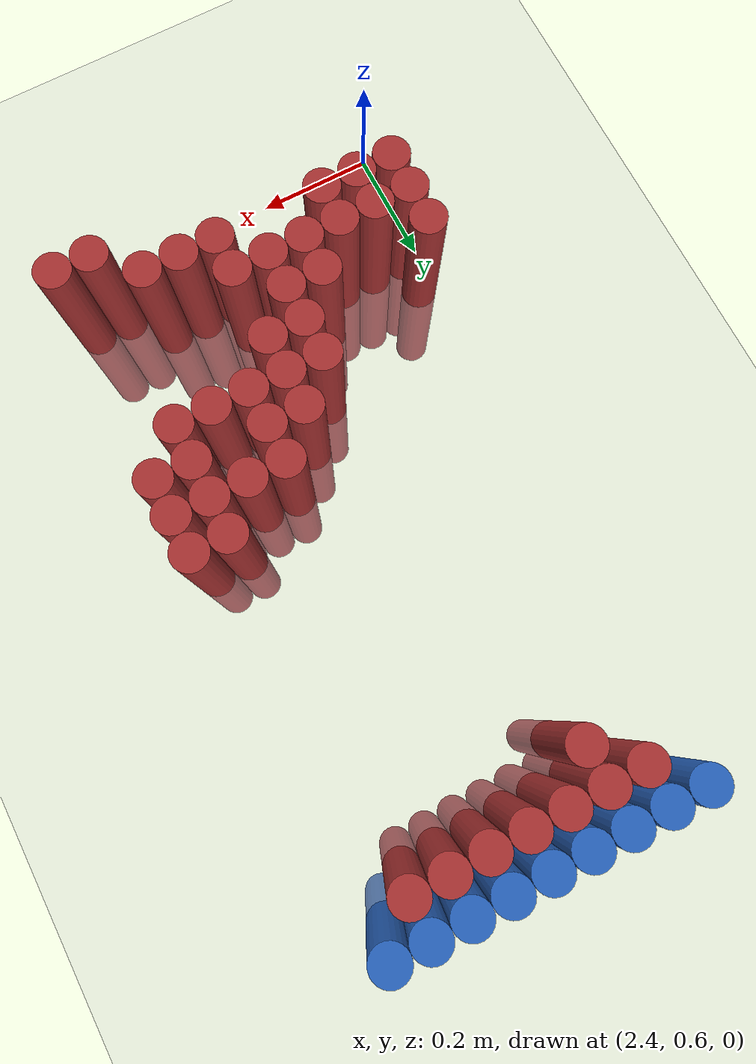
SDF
<sdf version="1.6">
 <world name="default">
  <model name="ground_plane">
   <static>1</static>
   <link name="link">
    <collision name="collision">
     <geometry><plane><normal>0 0 1</normal><size>100 100</size></plane></geometry>
     <surface><friction><ode><mu>100</mu><mu2>50</mu2></ode></friction></surface>
    </collision>
    <visual name="visual">
     <cast_shadows>0</cast_shadows>
     <geometry><plane><normal>0 0 1</normal><size>100 100</size></plane></geometry>
     <material>
      <script><uri>file://media/materials/scripts/gazebo.material</uri><name>Gazebo/Grey</name></script>
     </material>
    </visual>
   </link>
  </model>
  <model name="unit_cylinder_102">
   <static>1</static>
   <pose>2.490000 1.770000 0.000000 0.000000 0.000000 0.000000</pose>
   <link name="link">
    <inertial>
     <mass>1</mass>
     <inertia><ixx>0.145833</ixx><ixy>0</ixy><ixz>0</ixz><iyy>0.145833</iyy><iyz>0</iyz><izz>0.125</izz></inertia>
    </inertial>
    <collision name="collision">
     <geometry><cylinder><radius>0.030000</radius><length>0.5</length></cylinder></geometry>
    </collision>
    <visual name="visual">
     <geometry><cylinder><radius>0.030000</radius><length>0.5</length></cylinder></geometry>
     <material>
      <ambient>0.152000 0.379000 0.720000 1</ambient>
      <diffuse>0.152000 0.379000 0.720000 1</diffuse>
     </material>
     <material>
      <script><name>Gazebo/Grey</name><uri>file://media/materials/scripts/gazebo.material</uri></script>
     </material>
    </visual>
   </link>
  </model>
  <model name="unit_cylinder_103">
   <static>1</static>
   <pose>2.550000 1.770000 0.000000 0.000000 0.000000 0.000000</pose>
   <link name="link">
    <inertial>
     <mass>1</mass>
     <inertia><ixx>0.145833</ixx><ixy>0</ixy><ixz>0</ixz><iyy>0.145833</iyy><iyz>0</iyz><izz>0.125</izz></inertia>
    </inertial>
    <collision name="collision">
     <geometry><cylinder><radius>0.030000</radius><length>0.5</length></cylinder></geometry>
    </collision>
    <visual name="visual">
     <geometry><cylinder><radius>0.030000</radius><length>0.5</length></cylinder></geometry>
     <material>
      <ambient>0.152000 0.379000 0.720000 1</ambient>
      <diffuse>0.152000 0.379000 0.720000 1</diffuse>
     </material>
     <material>
      <script><name>Gazebo/Grey</name><uri>file://media/materials/scripts/gazebo.material</uri></script>
     </material>
    </visual>
   </link>
  </model>
  <model name="unit_cylinder_104">
   <static>1</static>
   <pose>2.610000 1.770000 0.000000 0.000000 0.000000 0.000000</pose>
   <link name="link">
    <inertial>
     <mass>1</mass>
     <inertia><ixx>0.145833</ixx><ixy>0</ixy><ixz>0</ixz><iyy>0.145833</iyy><iyz>0</iyz><izz>0.125</izz></inertia>
    </inertial>
    <collision name="collision">
     <geometry><cylinder><radius>0.030000</radius><length>0.5</length></cylinder></geometry>
    </collision>
    <visual name="visual">
     <geometry><cylinder><radius>0.030000</radius><length>0.5</length></cylinder></geometry>
     <material>
      <ambient>0.152000 0.379000 0.720000 1</ambient>
      <diffuse>0.152000 0.379000 0.720000 1</diffuse>
     </material>
     <material>
      <script><name>Gazebo/Grey</name><uri>file://media/materials/scripts/gazebo.material</uri></script>
     </material>
    </visual>
   </link>
  </model>
  <model name="unit_cylinder_105">
   <static>1</static>
   <pose>2.670000 1.770000 0.000000 0.000000 0.000000 0.000000</pose>
   <link name="link">
    <inertial>
     <mass>1</mass>
     <inertia><ixx>0.145833</ixx><ixy>0</ixy><ixz>0</ixz><iyy>0.145833</iyy><iyz>0</iyz><izz>0.125</izz></inertia>
    </inertial>
    <collision name="collision">
     <geometry><cylinder><radius>0.030000</radius><length>0.5</length></cylinder></geometry>
    </collision>
    <visual name="visual">
     <geometry><cylinder><radius>0.030000</radius><length>0.5</length></cylinder></geometry>
     <material>
      <ambient>0.152000 0.379000 0.720000 1</ambient>
      <diffuse>0.152000 0.379000 0.720000 1</diffuse>
     </material>
     <material>
      <script><name>Gazebo/Grey</name><uri>file://media/materials/scripts/gazebo.material</uri></script>
     </material>
    </visual>
   </link>
  </model>
  <model name="unit_cylinder_106">
   <static>1</static>
   <pose>2.730000 1.770000 0.000000 0.000000 0.000000 0.000000</pose>
   <link name="link">
    <inertial>
     <mass>1</mass>
     <inertia><ixx>0.145833</ixx><ixy>0</ixy><ixz>0</ixz><iyy>0.145833</iyy><iyz>0</iyz><izz>0.125</izz></inertia>
    </inertial>
    <collision name="collision">
     <geometry><cylinder><radius>0.030000</radius><length>0.5</length></cylinder></geometry>
    </collision>
    <visual name="visual">
     <geometry><cylinder><radius>0.030000</radius><length>0.5</length></cylinder></geometry>
     <material>
      <ambient>0.152000 0.379000 0.720000 1</ambient>
      <diffuse>0.152000 0.379000 0.720000 1</diffuse>
     </material>
     <material>
      <script><name>Gazebo/Grey</name><uri>file://media/materials/scripts/gazebo.material</uri></script>
     </material>
    </visual>
   </link>
  </model>
  <model name="unit_cylinder_107">
   <static>1</static>
   <pose>2.790000 1.770000 0.000000 0.000000 0.000000 0.000000</pose>
   <link name="link">
    <inertial>
     <mass>1</mass>
     <inertia><ixx>0.145833</ixx><ixy>0</ixy><ixz>0</ixz><iyy>0.145833</iyy><iyz>0</iyz><izz>0.125</izz></inertia>
    </inertial>
    <collision name="collision">
     <geometry><cylinder><radius>0.030000</radius><length>0.5</length></cylinder></geometry>
    </collision>
    <visual name="visual">
     <geometry><cylinder><radius>0.030000</radius><length>0.5</length></cylinder></geometry>
     <material>
      <ambient>0.152000 0.379000 0.720000 1</ambient>
      <diffuse>0.152000 0.379000 0.720000 1</diffuse>
     </material>
     <material>
      <script><name>Gazebo/Grey</name><uri>file://media/materials/scripts/gazebo.material</uri></script>
     </material>
    </visual>
   </link>
  </model>
  <model name="unit_cylinder_108">
   <static>1</static>
   <pose>2.850000 1.770000 0.000000 0.000000 0.000000 0.000000</pose>
   <link name="link">
    <inertial>
     <mass>1</mass>
     <inertia><ixx>0.145833</ixx><ixy>0</ixy><ixz>0</ixz><iyy>0.145833</iyy><iyz>0</iyz><izz>0.125</izz></inertia>
    </inertial>
    <collision name="collision">
     <geometry><cylinder><radius>0.030000</radius><length>0.5</length></cylinder></geometry>
    </collision>
    <visual name="visual">
     <geometry><cylinder><radius>0.030000</radius><length>0.5</length></cylinder></geometry>
     <material>
      <ambient>0.152000 0.379000 0.720000 1</ambient>
      <diffuse>0.152000 0.379000 0.720000 1</diffuse>
     </material>
     <material>
      <script><name>Gazebo/Grey</name><uri>file://media/materials/scripts/gazebo.material</uri></script>
     </material>
    </visual>
   </link>
  </model>
  <model name="unit_cylinder_109">
   <static>1</static>
   <pose>2.910000 1.770000 0.000000 0.000000 0.000000 0.000000</pose>
   <link name="link">
    <inertial>
     <mass>1</mass>
     <inertia><ixx>0.145833</ixx><ixy>0</ixy><ixz>0</ixz><iyy>0.145833</iyy><iyz>0</iyz><izz>0.125</izz></inertia>
    </inertial>
    <collision name="collision">
     <geometry><cylinder><radius>0.030000</radius><length>0.5</length></cylinder></geometry>
    </collision>
    <visual name="visual">
     <geometry><cylinder><radius>0.030000</radius><length>0.5</length></cylinder></geometry>
     <material>
      <ambient>0.152000 0.379000 0.720000 1</ambient>
      <diffuse>0.152000 0.379000 0.720000 1</diffuse>
     </material>
     <material>
      <script><name>Gazebo/Grey</name><uri>file://media/materials/scripts/gazebo.material</uri></script>
     </material>
    </visual>
   </link>
  </model>
  <model name="unit_cylinder_110">
   <static>1</static>
   <pose>2.970000 1.770000 0.000000 0.000000 0.000000 0.000000</pose>
   <link name="link">
    <inertial>
     <mass>1</mass>
     <inertia><ixx>0.145833</ixx><ixy>0</ixy><ixz>0</ixz><iyy>0.145833</iyy><iyz>0</iyz><izz>0.125</izz></inertia>
    </inertial>
    <collision name="collision">
     <geometry><cylinder><radius>0.030000</radius><length>0.5</length></cylinder></geometry>
    </collision>
    <visual name="visual">
     <geometry><cylinder><radius>0.030000</radius><length>0.5</length></cylinder></geometry>
     <material>
      <ambient>0.152000 0.379000 0.720000 1</ambient>
      <diffuse>0.152000 0.379000 0.720000 1</diffuse>
     </material>
     <material>
      <script><name>Gazebo/Grey</name><uri>file://media/materials/scripts/gazebo.material</uri></script>
     </material>
    </visual>
   </link>
  </model>
  <model name="unit_cylinder_128">
   <static>1</static>
   <pose>2.550000 1.710000 0.000000 0.000000 0.000000 0.000000</pose>
   <link name="link">
    <inertial>
     <mass>1</mass>
     <inertia><ixx>0.145833</ixx><ixy>0</ixy><ixz>0</ixz><iyy>0.145833</iyy><iyz>0</iyz><izz>0.125</izz></inertia>
    </inertial>
    <collision name="collision">
     <geometry><cylinder><radius>0.030000</radius><length>0.5</length></cylinder></geometry>
    </collision>
    <visual name="visual">
     <geometry><cylinder><radius>0.030000</radius><length>0.5</length></cylinder></geometry>
     <material>
      <ambient>0.648000 0.192000 0.192000 1</ambient>
      <diffuse>0.648000 0.192000 0.192000 1</diffuse>
     </material>
     <material>
      <script><name>Gazebo/Grey</name><uri>file://media/materials/scripts/gazebo.material</uri></script>
     </material>
    </visual>
   </link>
  </model>
  <model name="unit_cylinder_129">
   <static>1</static>
   <pose>2.610000 1.710000 0.000000 0.000000 0.000000 0.000000</pose>
   <link name="link">
    <inertial>
     <mass>1</mass>
     <inertia><ixx>0.145833</ixx><ixy>0</ixy><ixz>0</ixz><iyy>0.145833</iyy><iyz>0</iyz><izz>0.125</izz></inertia>
    </inertial>
    <collision name="collision">
     <geometry><cylinder><radius>0.030000</radius><length>0.5</length></cylinder></geometry>
    </collision>
    <visual name="visual">
     <geometry><cylinder><radius>0.030000</radius><length>0.5</length></cylinder></geometry>
     <material>
      <ambient>0.648000 0.192000 0.192000 1</ambient>
      <diffuse>0.648000 0.192000 0.192000 1</diffuse>
     </material>
     <material>
      <script><name>Gazebo/Grey</name><uri>file://media/materials/scripts/gazebo.material</uri></script>
     </material>
    </visual>
   </link>
  </model>
  <model name="unit_cylinder_130">
   <static>1</static>
   <pose>2.670000 1.710000 0.000000 0.000000 0.000000 0.000000</pose>
   <link name="link">
    <inertial>
     <mass>1</mass>
     <inertia><ixx>0.145833</ixx><ixy>0</ixy><ixz>0</ixz><iyy>0.145833</iyy><iyz>0</iyz><izz>0.125</izz></inertia>
    </inertial>
    <collision name="collision">
     <geometry><cylinder><radius>0.030000</radius><length>0.5</length></cylinder></geometry>
    </collision>
    <visual name="visual">
     <geometry><cylinder><radius>0.030000</radius><length>0.5</length></cylinder></geometry>
     <material>
      <ambient>0.648000 0.192000 0.192000 1</ambient>
      <diffuse>0.648000 0.192000 0.192000 1</diffuse>
     </material>
     <material>
      <script><name>Gazebo/Grey</name><uri>file://media/materials/scripts/gazebo.material</uri></script>
     </material>
    </visual>
   </link>
  </model>
  <model name="unit_cylinder_131">
   <static>1</static>
   <pose>2.730000 1.710000 0.000000 0.000000 0.000000 0.000000</pose>
   <link name="link">
    <inertial>
     <mass>1</mass>
     <inertia><ixx>0.145833</ixx><ixy>0</ixy><ixz>0</ixz><iyy>0.145833</iyy><iyz>0</iyz><izz>0.125</izz></inertia>
    </inertial>
    <collision name="collision">
     <geometry><cylinder><radius>0.030000</radius><length>0.5</length></cylinder></geometry>
    </collision>
    <visual name="visual">
     <geometry><cylinder><radius>0.030000</radius><length>0.5</length></cylinder></geometry>
     <material>
      <ambient>0.648000 0.192000 0.192000 1</ambient>
      <diffuse>0.648000 0.192000 0.192000 1</diffuse>
     </material>
     <material>
      <script><name>Gazebo/Grey</name><uri>file://media/materials/scripts/gazebo.material</uri></script>
     </material>
    </visual>
   </link>
  </model>
  <model name="unit_cylinder_132">
   <static>1</static>
   <pose>2.790000 1.710000 0.000000 0.000000 0.000000 0.000000</pose>
   <link name="link">
    <inertial>
     <mass>1</mass>
     <inertia><ixx>0.145833</ixx><ixy>0</ixy><ixz>0</ixz><iyy>0.145833</iyy><iyz>0</iyz><izz>0.125</izz></inertia>
    </inertial>
    <collision name="collision">
     <geometry><cylinder><radius>0.030000</radius><length>0.5</length></cylinder></geometry>
    </collision>
    <visual name="visual">
     <geometry><cylinder><radius>0.030000</radius><length>0.5</length></cylinder></geometry>
     <material>
      <ambient>0.648000 0.192000 0.192000 1</ambient>
      <diffuse>0.648000 0.192000 0.192000 1</diffuse>
     </material>
     <material>
      <script><name>Gazebo/Grey</name><uri>file://media/materials/scripts/gazebo.material</uri></script>
     </material>
    </visual>
   </link>
  </model>
  <model name="unit_cylinder_133">
   <static>1</static>
   <pose>2.850000 1.710000 0.000000 0.000000 0.000000 0.000000</pose>
   <link name="link">
    <inertial>
     <mass>1</mass>
     <inertia><ixx>0.145833</ixx><ixy>0</ixy><ixz>0</ixz><iyy>0.145833</iyy><iyz>0</iyz><izz>0.125</izz></inertia>
    </inertial>
    <collision name="collision">
     <geometry><cylinder><radius>0.030000</radius><length>0.5</length></cylinder></geometry>
    </collision>
    <visual name="visual">
     <geometry><cylinder><radius>0.030000</radius><length>0.5</length></cylinder></geometry>
     <material>
      <ambient>0.648000 0.192000 0.192000 1</ambient>
      <diffuse>0.648000 0.192000 0.192000 1</diffuse>
     </material>
     <material>
      <script><name>Gazebo/Grey</name><uri>file://media/materials/scripts/gazebo.material</uri></script>
     </material>
    </visual>
   </link>
  </model>
  <model name="unit_cylinder_134">
   <static>1</static>
   <pose>2.910000 1.710000 0.000000 0.000000 0.000000 0.000000</pose>
   <link name="link">
    <inertial>
     <mass>1</mass>
     <inertia><ixx>0.145833</ixx><ixy>0</ixy><ixz>0</ixz><iyy>0.145833</iyy><iyz>0</iyz><izz>0.125</izz></inertia>
    </inertial>
    <collision name="collision">
     <geometry><cylinder><radius>0.030000</radius><length>0.5</length></cylinder></geometry>
    </collision>
    <visual name="visual">
     <geometry><cylinder><radius>0.030000</radius><length>0.5</length></cylinder></geometry>
     <material>
      <ambient>0.648000 0.192000 0.192000 1</ambient>
      <diffuse>0.648000 0.192000 0.192000 1</diffuse>
     </material>
     <material>
      <script><name>Gazebo/Grey</name><uri>file://media/materials/scripts/gazebo.material</uri></script>
     </material>
    </visual>
   </link>
  </model>
  <model name="unit_cylinder_142">
   <static>1</static>
   <pose>2.610000 1.650000 0.000000 0.000000 0.000000 0.000000</pose>
   <link name="link">
    <inertial>
     <mass>1</mass>
     <inertia><ixx>0.145833</ixx><ixy>0</ixy><ixz>0</ixz><iyy>0.145833</iyy><iyz>0</iyz><izz>0.125</izz></inertia>
    </inertial>
    <collision name="collision">
     <geometry><cylinder><radius>0.030000</radius><length>0.5</length></cylinder></geometry>
    </collision>
    <visual name="visual">
     <geometry><cylinder><radius>0.030000</radius><length>0.5</length></cylinder></geometry>
     <material>
      <ambient>0.648000 0.192000 0.192000 1</ambient>
      <diffuse>0.648000 0.192000 0.192000 1</diffuse>
     </material>
     <material>
      <script><name>Gazebo/Grey</name><uri>file://media/materials/scripts/gazebo.material</uri></script>
     </material>
    </visual>
   </link>
  </model>
  <model name="unit_cylinder_152">
   <static>1</static>
   <pose>2.910000 1.170000 0.000000 0.000000 0.000000 0.000000</pose>
   <link name="link">
    <inertial>
     <mass>1</mass>
     <inertia><ixx>0.145833</ixx><ixy>0</ixy><ixz>0</ixz><iyy>0.145833</iyy><iyz>0</iyz><izz>0.125</izz></inertia>
    </inertial>
    <collision name="collision">
     <geometry><cylinder><radius>0.030000</radius><length>0.5</length></cylinder></geometry>
    </collision>
    <visual name="visual">
     <geometry><cylinder><radius>0.030000</radius><length>0.5</length></cylinder></geometry>
     <material>
      <ambient>0.648000 0.192000 0.192000 1</ambient>
      <diffuse>0.648000 0.192000 0.192000 1</diffuse>
     </material>
     <material>
      <script><name>Gazebo/Grey</name><uri>file://media/materials/scripts/gazebo.material</uri></script>
     </material>
    </visual>
   </link>
  </model>
  <model name="unit_cylinder_153">
   <static>1</static>
   <pose>2.970000 1.170000 0.000000 0.000000 0.000000 0.000000</pose>
   <link name="link">
    <inertial>
     <mass>1</mass>
     <inertia><ixx>0.145833</ixx><ixy>0</ixy><ixz>0</ixz><iyy>0.145833</iyy><iyz>0</iyz><izz>0.125</izz></inertia>
    </inertial>
    <collision name="collision">
     <geometry><cylinder><radius>0.030000</radius><length>0.5</length></cylinder></geometry>
    </collision>
    <visual name="visual">
     <geometry><cylinder><radius>0.030000</radius><length>0.5</length></cylinder></geometry>
     <material>
      <ambient>0.648000 0.192000 0.192000 1</ambient>
      <diffuse>0.648000 0.192000 0.192000 1</diffuse>
     </material>
     <material>
      <script><name>Gazebo/Grey</name><uri>file://media/materials/scripts/gazebo.material</uri></script>
     </material>
    </visual>
   </link>
  </model>
  <model name="unit_cylinder_158">
   <static>1</static>
   <pose>2.790000 1.110000 0.000000 0.000000 0.000000 0.000000</pose>
   <link name="link">
    <inertial>
     <mass>1</mass>
     <inertia><ixx>0.145833</ixx><ixy>0</ixy><ixz>0</ixz><iyy>0.145833</iyy><iyz>0</iyz><izz>0.125</izz></inertia>
    </inertial>
    <collision name="collision">
     <geometry><cylinder><radius>0.030000</radius><length>0.5</length></cylinder></geometry>
    </collision>
    <visual name="visual">
     <geometry><cylinder><radius>0.030000</radius><length>0.5</length></cylinder></geometry>
     <material>
      <ambient>0.648000 0.192000 0.192000 1</ambient>
      <diffuse>0.648000 0.192000 0.192000 1</diffuse>
     </material>
     <material>
      <script><name>Gazebo/Grey</name><uri>file://media/materials/scripts/gazebo.material</uri></script>
     </material>
    </visual>
   </link>
  </model>
  <model name="unit_cylinder_159">
   <static>1</static>
   <pose>2.850000 1.110000 0.000000 0.000000 0.000000 0.000000</pose>
   <link name="link">
    <inertial>
     <mass>1</mass>
     <inertia><ixx>0.145833</ixx><ixy>0</ixy><ixz>0</ixz><iyy>0.145833</iyy><iyz>0</iyz><izz>0.125</izz></inertia>
    </inertial>
    <collision name="collision">
     <geometry><cylinder><radius>0.030000</radius><length>0.5</length></cylinder></geometry>
    </collision>
    <visual name="visual">
     <geometry><cylinder><radius>0.030000</radius><length>0.5</length></cylinder></geometry>
     <material>
      <ambient>0.648000 0.192000 0.192000 1</ambient>
      <diffuse>0.648000 0.192000 0.192000 1</diffuse>
     </material>
     <material>
      <script><name>Gazebo/Grey</name><uri>file://media/materials/scripts/gazebo.material</uri></script>
     </material>
    </visual>
   </link>
  </model>
  <model name="unit_cylinder_160">
   <static>1</static>
   <pose>2.910000 1.110000 0.000000 0.000000 0.000000 0.000000</pose>
   <link name="link">
    <inertial>
     <mass>1</mass>
     <inertia><ixx>0.145833</ixx><ixy>0</ixy><ixz>0</ixz><iyy>0.145833</iyy><iyz>0</iyz><izz>0.125</izz></inertia>
    </inertial>
    <collision name="collision">
     <geometry><cylinder><radius>0.030000</radius><length>0.5</length></cylinder></geometry>
    </collision>
    <visual name="visual">
     <geometry><cylinder><radius>0.030000</radius><length>0.5</length></cylinder></geometry>
     <material>
      <ambient>0.648000 0.192000 0.192000 1</ambient>
      <diffuse>0.648000 0.192000 0.192000 1</diffuse>
     </material>
     <material>
      <script><name>Gazebo/Grey</name><uri>file://media/materials/scripts/gazebo.material</uri></script>
     </material>
    </visual>
   </link>
  </model>
  <model name="unit_cylinder_161">
   <static>1</static>
   <pose>2.970000 1.110000 0.000000 0.000000 0.000000 0.000000</pose>
   <link name="link">
    <inertial>
     <mass>1</mass>
     <inertia><ixx>0.145833</ixx><ixy>0</ixy><ixz>0</ixz><iyy>0.145833</iyy><iyz>0</iyz><izz>0.125</izz></inertia>
    </inertial>
    <collision name="collision">
     <geometry><cylinder><radius>0.030000</radius><length>0.5</length></cylinder></geometry>
    </collision>
    <visual name="visual">
     <geometry><cylinder><radius>0.030000</radius><length>0.5</length></cylinder></geometry>
     <material>
      <ambient>0.648000 0.192000 0.192000 1</ambient>
      <diffuse>0.648000 0.192000 0.192000 1</diffuse>
     </material>
     <material>
      <script><name>Gazebo/Grey</name><uri>file://media/materials/scripts/gazebo.material</uri></script>
     </material>
    </visual>
   </link>
  </model>
  <model name="unit_cylinder_169">
   <static>1</static>
   <pose>2.730000 1.050000 0.000000 0.000000 0.000000 0.000000</pose>
   <link name="link">
    <inertial>
     <mass>1</mass>
     <inertia><ixx>0.145833</ixx><ixy>0</ixy><ixz>0</ixz><iyy>0.145833</iyy><iyz>0</iyz><izz>0.125</izz></inertia>
    </inertial>
    <collision name="collision">
     <geometry><cylinder><radius>0.030000</radius><length>0.5</length></cylinder></geometry>
    </collision>
    <visual name="visual">
     <geometry><cylinder><radius>0.030000</radius><length>0.5</length></cylinder></geometry>
     <material>
      <ambient>0.648000 0.192000 0.192000 1</ambient>
      <diffuse>0.648000 0.192000 0.192000 1</diffuse>
     </material>
     <material>
      <script><name>Gazebo/Grey</name><uri>file://media/materials/scripts/gazebo.material</uri></script>
     </material>
    </visual>
   </link>
  </model>
  <model name="unit_cylinder_170">
   <static>1</static>
   <pose>2.790000 1.050000 0.000000 0.000000 0.000000 0.000000</pose>
   <link name="link">
    <inertial>
     <mass>1</mass>
     <inertia><ixx>0.145833</ixx><ixy>0</ixy><ixz>0</ixz><iyy>0.145833</iyy><iyz>0</iyz><izz>0.125</izz></inertia>
    </inertial>
    <collision name="collision">
     <geometry><cylinder><radius>0.030000</radius><length>0.5</length></cylinder></geometry>
    </collision>
    <visual name="visual">
     <geometry><cylinder><radius>0.030000</radius><length>0.5</length></cylinder></geometry>
     <material>
      <ambient>0.648000 0.192000 0.192000 1</ambient>
      <diffuse>0.648000 0.192000 0.192000 1</diffuse>
     </material>
     <material>
      <script><name>Gazebo/Grey</name><uri>file://media/materials/scripts/gazebo.material</uri></script>
     </material>
    </visual>
   </link>
  </model>
  <model name="unit_cylinder_171">
   <static>1</static>
   <pose>2.910000 1.050000 0.000000 0.000000 0.000000 0.000000</pose>
   <link name="link">
    <inertial>
     <mass>1</mass>
     <inertia><ixx>0.145833</ixx><ixy>0</ixy><ixz>0</ixz><iyy>0.145833</iyy><iyz>0</iyz><izz>0.125</izz></inertia>
    </inertial>
    <collision name="collision">
     <geometry><cylinder><radius>0.030000</radius><length>0.5</length></cylinder></geometry>
    </collision>
    <visual name="visual">
     <geometry><cylinder><radius>0.030000</radius><length>0.5</length></cylinder></geometry>
     <material>
      <ambient>0.648000 0.192000 0.192000 1</ambient>
      <diffuse>0.648000 0.192000 0.192000 1</diffuse>
     </material>
     <material>
      <script><name>Gazebo/Grey</name><uri>file://media/materials/scripts/gazebo.material</uri></script>
     </material>
    </visual>
   </link>
  </model>
  <model name="unit_cylinder_172">
   <static>1</static>
   <pose>2.970000 1.050000 0.000000 0.000000 0.000000 0.000000</pose>
   <link name="link">
    <inertial>
     <mass>1</mass>
     <inertia><ixx>0.145833</ixx><ixy>0</ixy><ixz>0</ixz><iyy>0.145833</iyy><iyz>0</iyz><izz>0.125</izz></inertia>
    </inertial>
    <collision name="collision">
     <geometry><cylinder><radius>0.030000</radius><length>0.5</length></cylinder></geometry>
    </collision>
    <visual name="visual">
     <geometry><cylinder><radius>0.030000</radius><length>0.5</length></cylinder></geometry>
     <material>
      <ambient>0.648000 0.192000 0.192000 1</ambient>
      <diffuse>0.648000 0.192000 0.192000 1</diffuse>
     </material>
     <material>
      <script><name>Gazebo/Grey</name><uri>file://media/materials/scripts/gazebo.material</uri></script>
     </material>
    </visual>
   </link>
  </model>
  <model name="unit_cylinder_180">
   <static>1</static>
   <pose>2.670000 0.990000 0.000000 0.000000 0.000000 0.000000</pose>
   <link name="link">
    <inertial>
     <mass>1</mass>
     <inertia><ixx>0.145833</ixx><ixy>0</ixy><ixz>0</ixz><iyy>0.145833</iyy><iyz>0</iyz><izz>0.125</izz></inertia>
    </inertial>
    <collision name="collision">
     <geometry><cylinder><radius>0.030000</radius><length>0.5</length></cylinder></geometry>
    </collision>
    <visual name="visual">
     <geometry><cylinder><radius>0.030000</radius><length>0.5</length></cylinder></geometry>
     <material>
      <ambient>0.648000 0.192000 0.192000 1</ambient>
      <diffuse>0.648000 0.192000 0.192000 1</diffuse>
     </material>
     <material>
      <script><name>Gazebo/Grey</name><uri>file://media/materials/scripts/gazebo.material</uri></script>
     </material>
    </visual>
   </link>
  </model>
  <model name="unit_cylinder_181">
   <static>1</static>
   <pose>2.730000 0.990000 0.000000 0.000000 0.000000 0.000000</pose>
   <link name="link">
    <inertial>
     <mass>1</mass>
     <inertia><ixx>0.145833</ixx><ixy>0</ixy><ixz>0</ixz><iyy>0.145833</iyy><iyz>0</iyz><izz>0.125</izz></inertia>
    </inertial>
    <collision name="collision">
     <geometry><cylinder><radius>0.030000</radius><length>0.5</length></cylinder></geometry>
    </collision>
    <visual name="visual">
     <geometry><cylinder><radius>0.030000</radius><length>0.5</length></cylinder></geometry>
     <material>
      <ambient>0.648000 0.192000 0.192000 1</ambient>
      <diffuse>0.648000 0.192000 0.192000 1</diffuse>
     </material>
     <material>
      <script><name>Gazebo/Grey</name><uri>file://media/materials/scripts/gazebo.material</uri></script>
     </material>
    </visual>
   </link>
  </model>
  <model name="unit_cylinder_182">
   <static>1</static>
   <pose>2.790000 0.990000 0.000000 0.000000 0.000000 0.000000</pose>
   <link name="link">
    <inertial>
     <mass>1</mass>
     <inertia><ixx>0.145833</ixx><ixy>0</ixy><ixz>0</ixz><iyy>0.145833</iyy><iyz>0</iyz><izz>0.125</izz></inertia>
    </inertial>
    <collision name="collision">
     <geometry><cylinder><radius>0.030000</radius><length>0.5</length></cylinder></geometry>
    </collision>
    <visual name="visual">
     <geometry><cylinder><radius>0.030000</radius><length>0.5</length></cylinder></geometry>
     <material>
      <ambient>0.648000 0.192000 0.192000 1</ambient>
      <diffuse>0.648000 0.192000 0.192000 1</diffuse>
     </material>
     <material>
      <script><name>Gazebo/Grey</name><uri>file://media/materials/scripts/gazebo.material</uri></script>
     </material>
    </visual>
   </link>
  </model>
  <model name="unit_cylinder_183">
   <static>1</static>
   <pose>2.850000 0.990000 0.000000 0.000000 0.000000 0.000000</pose>
   <link name="link">
    <inertial>
     <mass>1</mass>
     <inertia><ixx>0.145833</ixx><ixy>0</ixy><ixz>0</ixz><iyy>0.145833</iyy><iyz>0</iyz><izz>0.125</izz></inertia>
    </inertial>
    <collision name="collision">
     <geometry><cylinder><radius>0.030000</radius><length>0.5</length></cylinder></geometry>
    </collision>
    <visual name="visual">
     <geometry><cylinder><radius>0.030000</radius><length>0.5</length></cylinder></geometry>
     <material>
      <ambient>0.648000 0.192000 0.192000 1</ambient>
      <diffuse>0.648000 0.192000 0.192000 1</diffuse>
     </material>
     <material>
      <script><name>Gazebo/Grey</name><uri>file://media/materials/scripts/gazebo.material</uri></script>
     </material>
    </visual>
   </link>
  </model>
  <model name="unit_cylinder_184">
   <static>1</static>
   <pose>2.910000 0.990000 0.000000 0.000000 0.000000 0.000000</pose>
   <link name="link">
    <inertial>
     <mass>1</mass>
     <inertia><ixx>0.145833</ixx><ixy>0</ixy><ixz>0</ixz><iyy>0.145833</iyy><iyz>0</iyz><izz>0.125</izz></inertia>
    </inertial>
    <collision name="collision">
     <geometry><cylinder><radius>0.030000</radius><length>0.5</length></cylinder></geometry>
    </collision>
    <visual name="visual">
     <geometry><cylinder><radius>0.030000</radius><length>0.5</length></cylinder></geometry>
     <material>
      <ambient>0.648000 0.192000 0.192000 1</ambient>
      <diffuse>0.648000 0.192000 0.192000 1</diffuse>
     </material>
     <material>
      <script><name>Gazebo/Grey</name><uri>file://media/materials/scripts/gazebo.material</uri></script>
     </material>
    </visual>
   </link>
  </model>
  <model name="unit_cylinder_193">
   <static>1</static>
   <pose>2.670000 0.930000 0.000000 0.000000 0.000000 0.000000</pose>
   <link name="link">
    <inertial>
     <mass>1</mass>
     <inertia><ixx>0.145833</ixx><ixy>0</ixy><ixz>0</ixz><iyy>0.145833</iyy><iyz>0</iyz><izz>0.125</izz></inertia>
    </inertial>
    <collision name="collision">
     <geometry><cylinder><radius>0.030000</radius><length>0.5</length></cylinder></geometry>
    </collision>
    <visual name="visual">
     <geometry><cylinder><radius>0.030000</radius><length>0.5</length></cylinder></geometry>
     <material>
      <ambient>0.648000 0.192000 0.192000 1</ambient>
      <diffuse>0.648000 0.192000 0.192000 1</diffuse>
     </material>
     <material>
      <script><name>Gazebo/Grey</name><uri>file://media/materials/scripts/gazebo.material</uri></script>
     </material>
    </visual>
   </link>
  </model>
  <model name="unit_cylinder_194">
   <static>1</static>
   <pose>2.730000 0.930000 0.000000 0.000000 0.000000 0.000000</pose>
   <link name="link">
    <inertial>
     <mass>1</mass>
     <inertia><ixx>0.145833</ixx><ixy>0</ixy><ixz>0</ixz><iyy>0.145833</iyy><iyz>0</iyz><izz>0.125</izz></inertia>
    </inertial>
    <collision name="collision">
     <geometry><cylinder><radius>0.030000</radius><length>0.5</length></cylinder></geometry>
    </collision>
    <visual name="visual">
     <geometry><cylinder><radius>0.030000</radius><length>0.5</length></cylinder></geometry>
     <material>
      <ambient>0.648000 0.192000 0.192000 1</ambient>
      <diffuse>0.648000 0.192000 0.192000 1</diffuse>
     </material>
     <material>
      <script><name>Gazebo/Grey</name><uri>file://media/materials/scripts/gazebo.material</uri></script>
     </material>
    </visual>
   </link>
  </model>
  <model name="unit_cylinder_201">
   <static>1</static>
   <pose>2.430000 0.870000 0.000000 0.000000 0.000000 0.000000</pose>
   <link name="link">
    <inertial>
     <mass>1</mass>
     <inertia><ixx>0.145833</ixx><ixy>0</ixy><ixz>0</ixz><iyy>0.145833</iyy><iyz>0</iyz><izz>0.125</izz></inertia>
    </inertial>
    <collision name="collision">
     <geometry><cylinder><radius>0.030000</radius><length>0.5</length></cylinder></geometry>
    </collision>
    <visual name="visual">
     <geometry><cylinder><radius>0.030000</radius><length>0.5</length></cylinder></geometry>
     <material>
      <ambient>0.648000 0.192000 0.192000 1</ambient>
      <diffuse>0.648000 0.192000 0.192000 1</diffuse>
     </material>
     <material>
      <script><name>Gazebo/Grey</name><uri>file://media/materials/scripts/gazebo.material</uri></script>
     </material>
    </visual>
   </link>
  </model>
  <model name="unit_cylinder_202">
   <static>1</static>
   <pose>2.610000 0.870000 0.000000 0.000000 0.000000 0.000000</pose>
   <link name="link">
    <inertial>
     <mass>1</mass>
     <inertia><ixx>0.145833</ixx><ixy>0</ixy><ixz>0</ixz><iyy>0.145833</iyy><iyz>0</iyz><izz>0.125</izz></inertia>
    </inertial>
    <collision name="collision">
     <geometry><cylinder><radius>0.030000</radius><length>0.5</length></cylinder></geometry>
    </collision>
    <visual name="visual">
     <geometry><cylinder><radius>0.030000</radius><length>0.5</length></cylinder></geometry>
     <material>
      <ambient>0.648000 0.192000 0.192000 1</ambient>
      <diffuse>0.648000 0.192000 0.192000 1</diffuse>
     </material>
     <material>
      <script><name>Gazebo/Grey</name><uri>file://media/materials/scripts/gazebo.material</uri></script>
     </material>
    </visual>
   </link>
  </model>
  <model name="unit_cylinder_203">
   <static>1</static>
   <pose>2.670000 0.870000 0.000000 0.000000 0.000000 0.000000</pose>
   <link name="link">
    <inertial>
     <mass>1</mass>
     <inertia><ixx>0.145833</ixx><ixy>0</ixy><ixz>0</ixz><iyy>0.145833</iyy><iyz>0</iyz><izz>0.125</izz></inertia>
    </inertial>
    <collision name="collision">
     <geometry><cylinder><radius>0.030000</radius><length>0.5</length></cylinder></geometry>
    </collision>
    <visual name="visual">
     <geometry><cylinder><radius>0.030000</radius><length>0.5</length></cylinder></geometry>
     <material>
      <ambient>0.648000 0.192000 0.192000 1</ambient>
      <diffuse>0.648000 0.192000 0.192000 1</diffuse>
     </material>
     <material>
      <script><name>Gazebo/Grey</name><uri>file://media/materials/scripts/gazebo.material</uri></script>
     </material>
    </visual>
   </link>
  </model>
  <model name="unit_cylinder_207">
   <static>1</static>
   <pose>2.430000 0.810000 0.000000 0.000000 0.000000 0.000000</pose>
   <link name="link">
    <inertial>
     <mass>1</mass>
     <inertia><ixx>0.145833</ixx><ixy>0</ixy><ixz>0</ixz><iyy>0.145833</iyy><iyz>0</iyz><izz>0.125</izz></inertia>
    </inertial>
    <collision name="collision">
     <geometry><cylinder><radius>0.030000</radius><length>0.5</length></cylinder></geometry>
    </collision>
    <visual name="visual">
     <geometry><cylinder><radius>0.030000</radius><length>0.5</length></cylinder></geometry>
     <material>
      <ambient>0.648000 0.192000 0.192000 1</ambient>
      <diffuse>0.648000 0.192000 0.192000 1</diffuse>
     </material>
     <material>
      <script><name>Gazebo/Grey</name><uri>file://media/materials/scripts/gazebo.material</uri></script>
     </material>
    </visual>
   </link>
  </model>
  <model name="unit_cylinder_208">
   <static>1</static>
   <pose>2.490000 0.810000 0.000000 0.000000 0.000000 0.000000</pose>
   <link name="link">
    <inertial>
     <mass>1</mass>
     <inertia><ixx>0.145833</ixx><ixy>0</ixy><ixz>0</ixz><iyy>0.145833</iyy><iyz>0</iyz><izz>0.125</izz></inertia>
    </inertial>
    <collision name="collision">
     <geometry><cylinder><radius>0.030000</radius><length>0.5</length></cylinder></geometry>
    </collision>
    <visual name="visual">
     <geometry><cylinder><radius>0.030000</radius><length>0.5</length></cylinder></geometry>
     <material>
      <ambient>0.648000 0.192000 0.192000 1</ambient>
      <diffuse>0.648000 0.192000 0.192000 1</diffuse>
     </material>
     <material>
      <script><name>Gazebo/Grey</name><uri>file://media/materials/scripts/gazebo.material</uri></script>
     </material>
    </visual>
   </link>
  </model>
  <model name="unit_cylinder_209">
   <static>1</static>
   <pose>2.550000 0.810000 0.000000 0.000000 0.000000 0.000000</pose>
   <link name="link">
    <inertial>
     <mass>1</mass>
     <inertia><ixx>0.145833</ixx><ixy>0</ixy><ixz>0</ixz><iyy>0.145833</iyy><iyz>0</iyz><izz>0.125</izz></inertia>
    </inertial>
    <collision name="collision">
     <geometry><cylinder><radius>0.030000</radius><length>0.5</length></cylinder></geometry>
    </collision>
    <visual name="visual">
     <geometry><cylinder><radius>0.030000</radius><length>0.5</length></cylinder></geometry>
     <material>
      <ambient>0.648000 0.192000 0.192000 1</ambient>
      <diffuse>0.648000 0.192000 0.192000 1</diffuse>
     </material>
     <material>
      <script><name>Gazebo/Grey</name><uri>file://media/materials/scripts/gazebo.material</uri></script>
     </material>
    </visual>
   </link>
  </model>
  <model name="unit_cylinder_210">
   <static>1</static>
   <pose>2.610000 0.810000 0.000000 0.000000 0.000000 0.000000</pose>
   <link name="link">
    <inertial>
     <mass>1</mass>
     <inertia><ixx>0.145833</ixx><ixy>0</ixy><ixz>0</ixz><iyy>0.145833</iyy><iyz>0</iyz><izz>0.125</izz></inertia>
    </inertial>
    <collision name="collision">
     <geometry><cylinder><radius>0.030000</radius><length>0.5</length></cylinder></geometry>
    </collision>
    <visual name="visual">
     <geometry><cylinder><radius>0.030000</radius><length>0.5</length></cylinder></geometry>
     <material>
      <ambient>0.648000 0.192000 0.192000 1</ambient>
      <diffuse>0.648000 0.192000 0.192000 1</diffuse>
     </material>
     <material>
      <script><name>Gazebo/Grey</name><uri>file://media/materials/scripts/gazebo.material</uri></script>
     </material>
    </visual>
   </link>
  </model>
  <model name="unit_cylinder_211">
   <static>1</static>
   <pose>2.670000 0.810000 0.000000 0.000000 0.000000 0.000000</pose>
   <link name="link">
    <inertial>
     <mass>1</mass>
     <inertia><ixx>0.145833</ixx><ixy>0</ixy><ixz>0</ixz><iyy>0.145833</iyy><iyz>0</iyz><izz>0.125</izz></inertia>
    </inertial>
    <collision name="collision">
     <geometry><cylinder><radius>0.030000</radius><length>0.5</length></cylinder></geometry>
    </collision>
    <visual name="visual">
     <geometry><cylinder><radius>0.030000</radius><length>0.5</length></cylinder></geometry>
     <material>
      <ambient>0.648000 0.192000 0.192000 1</ambient>
      <diffuse>0.648000 0.192000 0.192000 1</diffuse>
     </material>
     <material>
      <script><name>Gazebo/Grey</name><uri>file://media/materials/scripts/gazebo.material</uri></script>
     </material>
    </visual>
   </link>
  </model>
  <model name="unit_cylinder_212">
   <static>1</static>
   <pose>2.730000 0.810000 0.000000 0.000000 0.000000 0.000000</pose>
   <link name="link">
    <inertial>
     <mass>1</mass>
     <inertia><ixx>0.145833</ixx><ixy>0</ixy><ixz>0</ixz><iyy>0.145833</iyy><iyz>0</iyz><izz>0.125</izz></inertia>
    </inertial>
    <collision name="collision">
     <geometry><cylinder><radius>0.030000</radius><length>0.5</length></cylinder></geometry>
    </collision>
    <visual name="visual">
     <geometry><cylinder><radius>0.030000</radius><length>0.5</length></cylinder></geometry>
     <material>
      <ambient>0.648000 0.192000 0.192000 1</ambient>
      <diffuse>0.648000 0.192000 0.192000 1</diffuse>
     </material>
     <material>
      <script><name>Gazebo/Grey</name><uri>file://media/materials/scripts/gazebo.material</uri></script>
     </material>
    </visual>
   </link>
  </model>
  <model name="unit_cylinder_218">
   <static>1</static>
   <pose>2.430000 0.750000 0.000000 0.000000 0.000000 0.000000</pose>
   <link name="link">
    <inertial>
     <mass>1</mass>
     <inertia><ixx>0.145833</ixx><ixy>0</ixy><ixz>0</ixz><iyy>0.145833</iyy><iyz>0</iyz><izz>0.125</izz></inertia>
    </inertial>
    <collision name="collision">
     <geometry><cylinder><radius>0.030000</radius><length>0.5</length></cylinder></geometry>
    </collision>
    <visual name="visual">
     <geometry><cylinder><radius>0.030000</radius><length>0.5</length></cylinder></geometry>
     <material>
      <ambient>0.648000 0.192000 0.192000 1</ambient>
      <diffuse>0.648000 0.192000 0.192000 1</diffuse>
     </material>
     <material>
      <script><name>Gazebo/Grey</name><uri>file://media/materials/scripts/gazebo.material</uri></script>
     </material>
    </visual>
   </link>
  </model>
  <model name="unit_cylinder_219">
   <static>1</static>
   <pose>2.490000 0.750000 0.000000 0.000000 0.000000 0.000000</pose>
   <link name="link">
    <inertial>
     <mass>1</mass>
     <inertia><ixx>0.145833</ixx><ixy>0</ixy><ixz>0</ixz><iyy>0.145833</iyy><iyz>0</iyz><izz>0.125</izz></inertia>
    </inertial>
    <collision name="collision">
     <geometry><cylinder><radius>0.030000</radius><length>0.5</length></cylinder></geometry>
    </collision>
    <visual name="visual">
     <geometry><cylinder><radius>0.030000</radius><length>0.5</length></cylinder></geometry>
     <material>
      <ambient>0.648000 0.192000 0.192000 1</ambient>
      <diffuse>0.648000 0.192000 0.192000 1</diffuse>
     </material>
     <material>
      <script><name>Gazebo/Grey</name><uri>file://media/materials/scripts/gazebo.material</uri></script>
     </material>
    </visual>
   </link>
  </model>
  <model name="unit_cylinder_220">
   <static>1</static>
   <pose>2.550000 0.750000 0.000000 0.000000 0.000000 0.000000</pose>
   <link name="link">
    <inertial>
     <mass>1</mass>
     <inertia><ixx>0.145833</ixx><ixy>0</ixy><ixz>0</ixz><iyy>0.145833</iyy><iyz>0</iyz><izz>0.125</izz></inertia>
    </inertial>
    <collision name="collision">
     <geometry><cylinder><radius>0.030000</radius><length>0.5</length></cylinder></geometry>
    </collision>
    <visual name="visual">
     <geometry><cylinder><radius>0.030000</radius><length>0.5</length></cylinder></geometry>
     <material>
      <ambient>0.648000 0.192000 0.192000 1</ambient>
      <diffuse>0.648000 0.192000 0.192000 1</diffuse>
     </material>
     <material>
      <script><name>Gazebo/Grey</name><uri>file://media/materials/scripts/gazebo.material</uri></script>
     </material>
    </visual>
   </link>
  </model>
  <model name="unit_cylinder_221">
   <static>1</static>
   <pose>2.730000 0.750000 0.000000 0.000000 0.000000 0.000000</pose>
   <link name="link">
    <inertial>
     <mass>1</mass>
     <inertia><ixx>0.145833</ixx><ixy>0</ixy><ixz>0</ixz><iyy>0.145833</iyy><iyz>0</iyz><izz>0.125</izz></inertia>
    </inertial>
    <collision name="collision">
     <geometry><cylinder><radius>0.030000</radius><length>0.5</length></cylinder></geometry>
    </collision>
    <visual name="visual">
     <geometry><cylinder><radius>0.030000</radius><length>0.5</length></cylinder></geometry>
     <material>
      <ambient>0.648000 0.192000 0.192000 1</ambient>
      <diffuse>0.648000 0.192000 0.192000 1</diffuse>
     </material>
     <material>
      <script><name>Gazebo/Grey</name><uri>file://media/materials/scripts/gazebo.material</uri></script>
     </material>
    </visual>
   </link>
  </model>
  <model name="unit_cylinder_222">
   <static>1</static>
   <pose>2.790000 0.750000 0.000000 0.000000 0.000000 0.000000</pose>
   <link name="link">
    <inertial>
     <mass>1</mass>
     <inertia><ixx>0.145833</ixx><ixy>0</ixy><ixz>0</ixz><iyy>0.145833</iyy><iyz>0</iyz><izz>0.125</izz></inertia>
    </inertial>
    <collision name="collision">
     <geometry><cylinder><radius>0.030000</radius><length>0.5</length></cylinder></geometry>
    </collision>
    <visual name="visual">
     <geometry><cylinder><radius>0.030000</radius><length>0.5</length></cylinder></geometry>
     <material>
      <ambient>0.648000 0.192000 0.192000 1</ambient>
      <diffuse>0.648000 0.192000 0.192000 1</diffuse>
     </material>
     <material>
      <script><name>Gazebo/Grey</name><uri>file://media/materials/scripts/gazebo.material</uri></script>
     </material>
    </visual>
   </link>
  </model>
  <model name="unit_cylinder_223">
   <static>1</static>
   <pose>2.850000 0.750000 0.000000 0.000000 0.000000 0.000000</pose>
   <link name="link">
    <inertial>
     <mass>1</mass>
     <inertia><ixx>0.145833</ixx><ixy>0</ixy><ixz>0</ixz><iyy>0.145833</iyy><iyz>0</iyz><izz>0.125</izz></inertia>
    </inertial>
    <collision name="collision">
     <geometry><cylinder><radius>0.030000</radius><length>0.5</length></cylinder></geometry>
    </collision>
    <visual name="visual">
     <geometry><cylinder><radius>0.030000</radius><length>0.5</length></cylinder></geometry>
     <material>
      <ambient>0.648000 0.192000 0.192000 1</ambient>
      <diffuse>0.648000 0.192000 0.192000 1</diffuse>
     </material>
     <material>
      <script><name>Gazebo/Grey</name><uri>file://media/materials/scripts/gazebo.material</uri></script>
     </material>
    </visual>
   </link>
  </model>
  <model name="unit_cylinder_231">
   <static>1</static>
   <pose>2.910000 0.690000 0.000000 0.000000 0.000000 0.000000</pose>
   <link name="link">
    <inertial>
     <mass>1</mass>
     <inertia><ixx>0.145833</ixx><ixy>0</ixy><ixz>0</ixz><iyy>0.145833</iyy><iyz>0</iyz><izz>0.125</izz></inertia>
    </inertial>
    <collision name="collision">
     <geometry><cylinder><radius>0.030000</radius><length>0.5</length></cylinder></geometry>
    </collision>
    <visual name="visual">
     <geometry><cylinder><radius>0.030000</radius><length>0.5</length></cylinder></geometry>
     <material>
      <ambient>0.648000 0.192000 0.192000 1</ambient>
      <diffuse>0.648000 0.192000 0.192000 1</diffuse>
     </material>
     <material>
      <script><name>Gazebo/Grey</name><uri>file://media/materials/scripts/gazebo.material</uri></script>
     </material>
    </visual>
   </link>
  </model>
  <model name="unit_cylinder_232">
   <static>1</static>
   <pose>2.970000 0.690000 0.000000 0.000000 0.000000 0.000000</pose>
   <link name="link">
    <inertial>
     <mass>1</mass>
     <inertia><ixx>0.145833</ixx><ixy>0</ixy><ixz>0</ixz><iyy>0.145833</iyy><iyz>0</iyz><izz>0.125</izz></inertia>
    </inertial>
    <collision name="collision">
     <geometry><cylinder><radius>0.030000</radius><length>0.5</length></cylinder></geometry>
    </collision>
    <visual name="visual">
     <geometry><cylinder><radius>0.030000</radius><length>0.5</length></cylinder></geometry>
     <material>
      <ambient>0.648000 0.192000 0.192000 1</ambient>
      <diffuse>0.648000 0.192000 0.192000 1</diffuse>
     </material>
     <material>
      <script><name>Gazebo/Grey</name><uri>file://media/materials/scripts/gazebo.material</uri></script>
     </material>
    </visual>
   </link>
  </model>
 </world>
</sdf>
